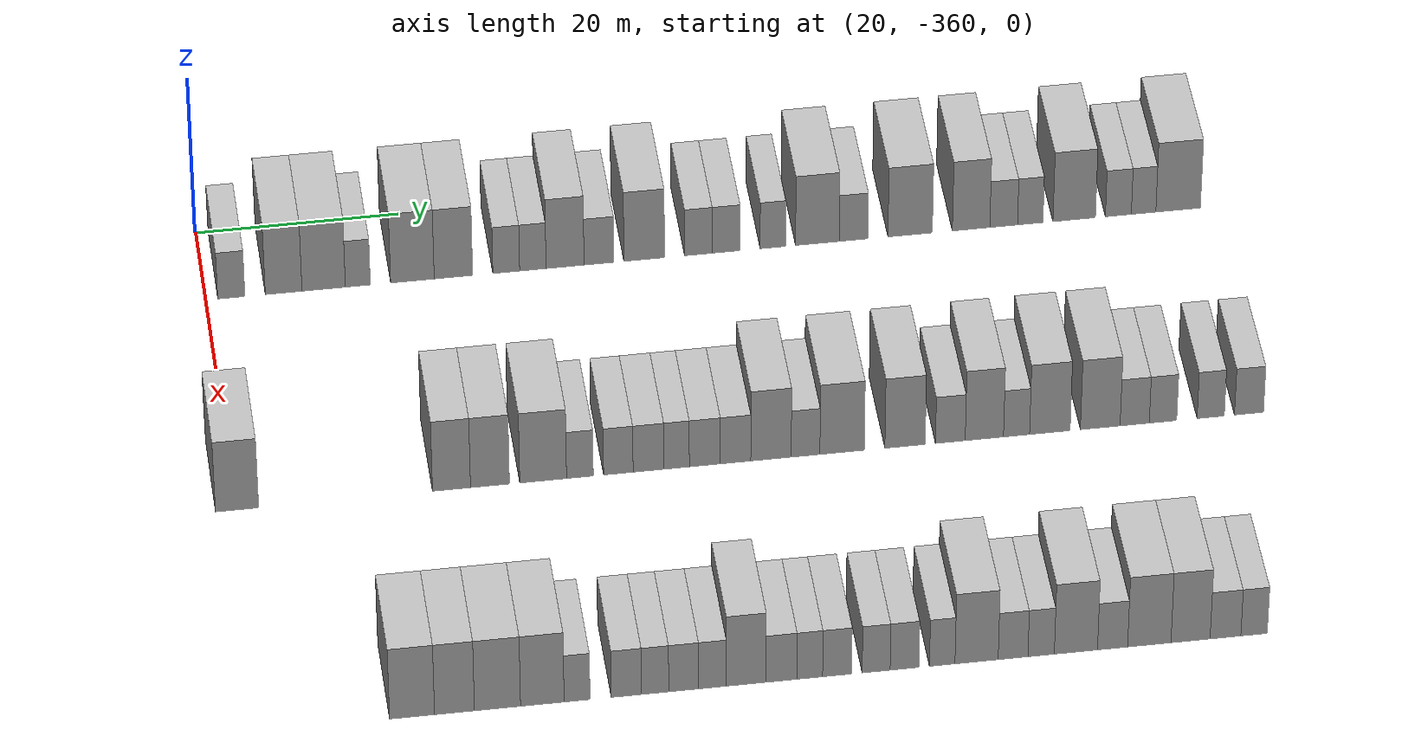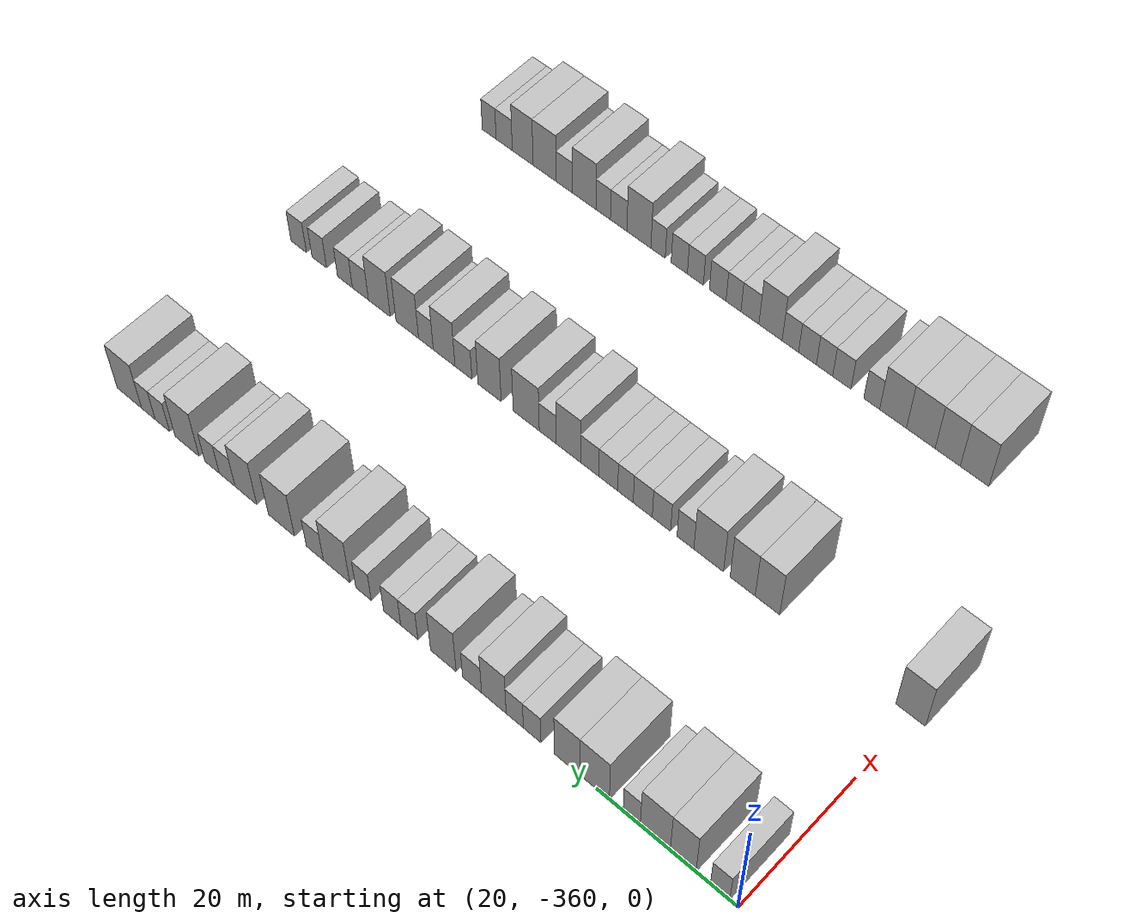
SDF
<sdf version="1.6">
 <world name="default">
  <model name="building_28">
   <static>1</static>
   <pose>25.0000 -357.4832 0 0.000000 0.000000 0.000000</pose>
   <link name="link">
    <pose>0 0 3.00 0 0 0</pose>
    <collision name="collision"><geometry><box><size>10.0000 2.6595 6.0000</size></box></geometry></collision>
    <visual name="visual">
     <cast_shadows>0</cast_shadows>
     <geometry><box><size>10.0000 2.6595 6.0000</size></box></geometry>
     <material>
      <script>
       <uri>model://HANNAS_wall/materials/scripts</uri>
       <uri>model://HANNAS_wall/materials/textures</uri>
       <name>vrc/HANNAS_wall</name>
      </script>
     </material>
    </visual>
   </link>
  </model>
  <model name="building_29">
   <static>1</static>
   <pose>25.0000 -352.3523 0 0.000000 0.000000 0.000000</pose>
   <link name="link">
    <pose>0 0 4.50 0 0 0</pose>
    <collision name="collision"><geometry><box><size>10.0000 3.6022 9.0000</size></box></geometry></collision>
    <visual name="visual">
     <cast_shadows>0</cast_shadows>
     <geometry><box><size>10.0000 3.6022 9.0000</size></box></geometry>
     <material>
      <script>
       <uri>model://HANNAS_wall/materials/scripts</uri>
       <uri>model://HANNAS_wall/materials/textures</uri>
       <name>vrc/HANNAS_wall</name>
      </script>
     </material>
    </visual>
   </link>
  </model>
  <model name="building_30">
   <static>1</static>
   <pose>25.0000 -348.4182 0 0.000000 0.000000 0.000000</pose>
   <link name="link">
    <pose>0 0 4.50 0 0 0</pose>
    <collision name="collision"><geometry><box><size>10.0000 4.2660 9.0000</size></box></geometry></collision>
    <visual name="visual">
     <cast_shadows>0</cast_shadows>
     <geometry><box><size>10.0000 4.2660 9.0000</size></box></geometry>
     <material>
      <script>
       <uri>model://HANNAS_wall/materials/scripts</uri>
       <uri>model://HANNAS_wall/materials/textures</uri>
       <name>vrc/HANNAS_wall</name>
      </script>
     </material>
    </visual>
   </link>
  </model>
  <model name="building_31">
   <static>1</static>
   <pose>25.0000 -345.0613 0 0.000000 0.000000 0.000000</pose>
   <link name="link">
    <pose>0 0 3.00 0 0 0</pose>
    <collision name="collision"><geometry><box><size>10.0000 2.4478 6.0000</size></box></geometry></collision>
    <visual name="visual">
     <cast_shadows>0</cast_shadows>
     <geometry><box><size>10.0000 2.4478 6.0000</size></box></geometry>
     <material>
      <script>
       <uri>model://HANNAS_wall/materials/scripts</uri>
       <uri>model://HANNAS_wall/materials/textures</uri>
       <name>vrc/HANNAS_wall</name>
      </script>
     </material>
    </visual>
   </link>
  </model>
  <model name="building_32">
   <static>1</static>
   <pose>25.0000 -339.6926 0 0.000000 0.000000 0.000000</pose>
   <link name="link">
    <pose>0 0 4.50 0 0 0</pose>
    <collision name="collision"><geometry><box><size>10.0000 4.2896 9.0000</size></box></geometry></collision>
    <visual name="visual">
     <cast_shadows>0</cast_shadows>
     <geometry><box><size>10.0000 4.2896 9.0000</size></box></geometry>
     <material>
      <script>
       <uri>model://HANNAS_wall/materials/scripts</uri>
       <uri>model://HANNAS_wall/materials/textures</uri>
       <name>vrc/HANNAS_wall</name>
      </script>
     </material>
    </visual>
   </link>
  </model>
  <model name="building_33">
   <static>1</static>
   <pose>25.0000 -335.6568 0 0.000000 0.000000 0.000000</pose>
   <link name="link">
    <pose>0 0 4.50 0 0 0</pose>
    <collision name="collision"><geometry><box><size>10.0000 3.7820 9.0000</size></box></geometry></collision>
    <visual name="visual">
     <cast_shadows>0</cast_shadows>
     <geometry><box><size>10.0000 3.7820 9.0000</size></box></geometry>
     <material>
      <script>
       <uri>model://HANNAS_wall/materials/scripts</uri>
       <uri>model://HANNAS_wall/materials/textures</uri>
       <name>vrc/HANNAS_wall</name>
      </script>
     </material>
    </visual>
   </link>
  </model>
  <model name="building_34">
   <static>1</static>
   <pose>25.0000 -330.4455 0 0.000000 0.000000 0.000000</pose>
   <link name="link">
    <pose>0 0 3.00 0 0 0</pose>
    <collision name="collision"><geometry><box><size>10.0000 2.6406 6.0000</size></box></geometry></collision>
    <visual name="visual">
     <cast_shadows>0</cast_shadows>
     <geometry><box><size>10.0000 2.6406 6.0000</size></box></geometry>
     <material>
      <script>
       <uri>model://HANNAS_wall/materials/scripts</uri>
       <uri>model://HANNAS_wall/materials/textures</uri>
       <name>vrc/HANNAS_wall</name>
      </script>
     </material>
    </visual>
   </link>
  </model>
  <model name="building_35">
   <static>1</static>
   <pose>25.0000 -327.8226 0 0.000000 0.000000 0.000000</pose>
   <link name="link">
    <pose>0 0 3.00 0 0 0</pose>
    <collision name="collision"><geometry><box><size>10.0000 2.6051 6.0000</size></box></geometry></collision>
    <visual name="visual">
     <cast_shadows>0</cast_shadows>
     <geometry><box><size>10.0000 2.6051 6.0000</size></box></geometry>
     <material>
      <script>
       <uri>model://HANNAS_wall/materials/scripts</uri>
       <uri>model://HANNAS_wall/materials/textures</uri>
       <name>vrc/HANNAS_wall</name>
      </script>
     </material>
    </visual>
   </link>
  </model>
  <model name="building_36">
   <static>1</static>
   <pose>25.0000 -324.6430 0 0.000000 0.000000 0.000000</pose>
   <link name="link">
    <pose>0 0 4.50 0 0 0</pose>
    <collision name="collision"><geometry><box><size>10.0000 3.7541 9.0000</size></box></geometry></collision>
    <visual name="visual">
     <cast_shadows>0</cast_shadows>
     <geometry><box><size>10.0000 3.7541 9.0000</size></box></geometry>
     <material>
      <script>
       <uri>model://HANNAS_wall/materials/scripts</uri>
       <uri>model://HANNAS_wall/materials/textures</uri>
       <name>vrc/HANNAS_wall</name>
      </script>
     </material>
    </visual>
   </link>
  </model>
  <model name="building_37">
   <static>1</static>
   <pose>25.0000 -321.2948 0 0.000000 0.000000 0.000000</pose>
   <link name="link">
    <pose>0 0 3.00 0 0 0</pose>
    <collision name="collision"><geometry><box><size>10.0000 2.9424 6.0000</size></box></geometry></collision>
    <visual name="visual">
     <cast_shadows>0</cast_shadows>
     <geometry><box><size>10.0000 2.9424 6.0000</size></box></geometry>
     <material>
      <script>
       <uri>model://HANNAS_wall/materials/scripts</uri>
       <uri>model://HANNAS_wall/materials/textures</uri>
       <name>vrc/HANNAS_wall</name>
      </script>
     </material>
    </visual>
   </link>
  </model>
  <model name="building_38">
   <static>1</static>
   <pose>25.0000 -316.8187 0 0.000000 0.000000 0.000000</pose>
   <link name="link">
    <pose>0 0 4.50 0 0 0</pose>
    <collision name="collision"><geometry><box><size>10.0000 4.0096 9.0000</size></box></geometry></collision>
    <visual name="visual">
     <cast_shadows>0</cast_shadows>
     <geometry><box><size>10.0000 4.0096 9.0000</size></box></geometry>
     <material>
      <script>
       <uri>model://HANNAS_wall/materials/scripts</uri>
       <uri>model://HANNAS_wall/materials/textures</uri>
       <name>vrc/HANNAS_wall</name>
      </script>
     </material>
    </visual>
   </link>
  </model>
  <model name="building_39">
   <static>1</static>
   <pose>25.0000 -311.4436 0 0.000000 0.000000 0.000000</pose>
   <link name="link">
    <pose>0 0 3.00 0 0 0</pose>
    <collision name="collision"><geometry><box><size>10.0000 2.7406 6.0000</size></box></geometry></collision>
    <visual name="visual">
     <cast_shadows>0</cast_shadows>
     <geometry><box><size>10.0000 2.7406 6.0000</size></box></geometry>
     <material>
      <script>
       <uri>model://HANNAS_wall/materials/scripts</uri>
       <uri>model://HANNAS_wall/materials/textures</uri>
       <name>vrc/HANNAS_wall</name>
      </script>
     </material>
    </visual>
   </link>
  </model>
  <model name="building_40">
   <static>1</static>
   <pose>25.0000 -308.6989 0 0.000000 0.000000 0.000000</pose>
   <link name="link">
    <pose>0 0 3.00 0 0 0</pose>
    <collision name="collision"><geometry><box><size>10.0000 2.7490 6.0000</size></box></geometry></collision>
    <visual name="visual">
     <cast_shadows>0</cast_shadows>
     <geometry><box><size>10.0000 2.7490 6.0000</size></box></geometry>
     <material>
      <script>
       <uri>model://HANNAS_wall/materials/scripts</uri>
       <uri>model://HANNAS_wall/materials/textures</uri>
       <name>vrc/HANNAS_wall</name>
      </script>
     </material>
    </visual>
   </link>
  </model>
  <model name="building_41">
   <static>1</static>
   <pose>25.0000 -304.0671 0 0.000000 0.000000 0.000000</pose>
   <link name="link">
    <pose>0 0 3.00 0 0 0</pose>
    <collision name="collision"><geometry><box><size>10.0000 2.5145 6.0000</size></box></geometry></collision>
    <visual name="visual">
     <cast_shadows>0</cast_shadows>
     <geometry><box><size>10.0000 2.5145 6.0000</size></box></geometry>
     <material>
      <script>
       <uri>model://HANNAS_wall/materials/scripts</uri>
       <uri>model://HANNAS_wall/materials/textures</uri>
       <name>vrc/HANNAS_wall</name>
      </script>
     </material>
    </visual>
   </link>
  </model>
  <model name="building_42">
   <static>1</static>
   <pose>25.0000 -299.6457 0 0.000000 0.000000 0.000000</pose>
   <link name="link">
    <pose>0 0 4.50 0 0 0</pose>
    <collision name="collision"><geometry><box><size>10.0000 4.3284 9.0000</size></box></geometry></collision>
    <visual name="visual">
     <cast_shadows>0</cast_shadows>
     <geometry><box><size>10.0000 4.3284 9.0000</size></box></geometry>
     <material>
      <script>
       <uri>model://HANNAS_wall/materials/scripts</uri>
       <uri>model://HANNAS_wall/materials/textures</uri>
       <name>vrc/HANNAS_wall</name>
      </script>
     </material>
    </visual>
   </link>
  </model>
  <model name="building_43">
   <static>1</static>
   <pose>25.0000 -296.0547 0 0.000000 0.000000 0.000000</pose>
   <link name="link">
    <pose>0 0 3.00 0 0 0</pose>
    <collision name="collision"><geometry><box><size>10.0000 2.8537 6.0000</size></box></geometry></collision>
    <visual name="visual">
     <cast_shadows>0</cast_shadows>
     <geometry><box><size>10.0000 2.8537 6.0000</size></box></geometry>
     <material>
      <script>
       <uri>model://HANNAS_wall/materials/scripts</uri>
       <uri>model://HANNAS_wall/materials/textures</uri>
       <name>vrc/HANNAS_wall</name>
      </script>
     </material>
    </visual>
   </link>
  </model>
  <model name="building_44">
   <static>1</static>
   <pose>25.0000 -290.4198 0 0.000000 0.000000 0.000000</pose>
   <link name="link">
    <pose>0 0 4.50 0 0 0</pose>
    <collision name="collision"><geometry><box><size>10.0000 4.4162 9.0000</size></box></geometry></collision>
    <visual name="visual">
     <cast_shadows>0</cast_shadows>
     <geometry><box><size>10.0000 4.4162 9.0000</size></box></geometry>
     <material>
      <script>
       <uri>model://HANNAS_wall/materials/scripts</uri>
       <uri>model://HANNAS_wall/materials/textures</uri>
       <name>vrc/HANNAS_wall</name>
      </script>
     </material>
    </visual>
   </link>
  </model>
  <model name="building_45">
   <static>1</static>
   <pose>25.0000 -284.3430 0 0.000000 0.000000 0.000000</pose>
   <link name="link">
    <pose>0 0 4.50 0 0 0</pose>
    <collision name="collision"><geometry><box><size>10.0000 3.7375 9.0000</size></box></geometry></collision>
    <visual name="visual">
     <cast_shadows>0</cast_shadows>
     <geometry><box><size>10.0000 3.7375 9.0000</size></box></geometry>
     <material>
      <script>
       <uri>model://HANNAS_wall/materials/scripts</uri>
       <uri>model://HANNAS_wall/materials/textures</uri>
       <name>vrc/HANNAS_wall</name>
      </script>
     </material>
    </visual>
   </link>
  </model>
  <model name="building_46">
   <static>1</static>
   <pose>25.0000 -281.0933 0 0.000000 0.000000 0.000000</pose>
   <link name="link">
    <pose>0 0 3.00 0 0 0</pose>
    <collision name="collision"><geometry><box><size>10.0000 2.7618 6.0000</size></box></geometry></collision>
    <visual name="visual">
     <cast_shadows>0</cast_shadows>
     <geometry><box><size>10.0000 2.7618 6.0000</size></box></geometry>
     <material>
      <script>
       <uri>model://HANNAS_wall/materials/scripts</uri>
       <uri>model://HANNAS_wall/materials/textures</uri>
       <name>vrc/HANNAS_wall</name>
      </script>
     </material>
    </visual>
   </link>
  </model>
  <model name="building_47">
   <static>1</static>
   <pose>25.0000 -278.4432 0 0.000000 0.000000 0.000000</pose>
   <link name="link">
    <pose>0 0 3.00 0 0 0</pose>
    <collision name="collision"><geometry><box><size>10.0000 2.5383 6.0000</size></box></geometry></collision>
    <visual name="visual">
     <cast_shadows>0</cast_shadows>
     <geometry><box><size>10.0000 2.5383 6.0000</size></box></geometry>
     <material>
      <script>
       <uri>model://HANNAS_wall/materials/scripts</uri>
       <uri>model://HANNAS_wall/materials/textures</uri>
       <name>vrc/HANNAS_wall</name>
      </script>
     </material>
    </visual>
   </link>
  </model>
  <model name="building_48">
   <static>1</static>
   <pose>25.0000 -274.0526 0 0.000000 0.000000 0.000000</pose>
   <link name="link">
    <pose>0 0 4.50 0 0 0</pose>
    <collision name="collision"><geometry><box><size>10.0000 4.2430 9.0000</size></box></geometry></collision>
    <visual name="visual">
     <cast_shadows>0</cast_shadows>
     <geometry><box><size>10.0000 4.2430 9.0000</size></box></geometry>
     <material>
      <script>
       <uri>model://HANNAS_wall/materials/scripts</uri>
       <uri>model://HANNAS_wall/materials/textures</uri>
       <name>vrc/HANNAS_wall</name>
      </script>
     </material>
    </visual>
   </link>
  </model>
  <model name="building_49">
   <static>1</static>
   <pose>25.0000 -269.6338 0 0.000000 0.000000 0.000000</pose>
   <link name="link">
    <pose>0 0 3.00 0 0 0</pose>
    <collision name="collision"><geometry><box><size>10.0000 2.5947 6.0000</size></box></geometry></collision>
    <visual name="visual">
     <cast_shadows>0</cast_shadows>
     <geometry><box><size>10.0000 2.5947 6.0000</size></box></geometry>
     <material>
      <script>
       <uri>model://HANNAS_wall/materials/scripts</uri>
       <uri>model://HANNAS_wall/materials/textures</uri>
       <name>vrc/HANNAS_wall</name>
      </script>
     </material>
    </visual>
   </link>
  </model>
  <model name="building_50">
   <static>1</static>
   <pose>25.0000 -267.1086 0 0.000000 0.000000 0.000000</pose>
   <link name="link">
    <pose>0 0 3.00 0 0 0</pose>
    <collision name="collision"><geometry><box><size>10.0000 2.4556 6.0000</size></box></geometry></collision>
    <visual name="visual">
     <cast_shadows>0</cast_shadows>
     <geometry><box><size>10.0000 2.4556 6.0000</size></box></geometry>
     <material>
      <script>
       <uri>model://HANNAS_wall/materials/scripts</uri>
       <uri>model://HANNAS_wall/materials/textures</uri>
       <name>vrc/HANNAS_wall</name>
      </script>
     </material>
    </visual>
   </link>
  </model>
  <model name="building_51">
   <static>1</static>
   <pose>25.0000 -263.6527 0 0.000000 0.000000 0.000000</pose>
   <link name="link">
    <pose>0 0 4.50 0 0 0</pose>
    <collision name="collision"><geometry><box><size>10.0000 4.4561 9.0000</size></box></geometry></collision>
    <visual name="visual">
     <cast_shadows>0</cast_shadows>
     <geometry><box><size>10.0000 4.4561 9.0000</size></box></geometry>
     <material>
      <script>
       <uri>model://HANNAS_wall/materials/scripts</uri>
       <uri>model://HANNAS_wall/materials/textures</uri>
       <name>vrc/HANNAS_wall</name>
      </script>
     </material>
    </visual>
   </link>
  </model>
  <model name="building_252">
   <static>1</static>
   <pose>55.0000 -359.8526 0 0.000000 0.000000 0.000000</pose>
   <link name="link">
    <pose>0 0 4.50 0 0 0</pose>
    <collision name="collision"><geometry><box><size>10.0000 4.1238 9.0000</size></box></geometry></collision>
    <visual name="visual">
     <cast_shadows>0</cast_shadows>
     <geometry><box><size>10.0000 4.1238 9.0000</size></box></geometry>
     <material>
      <script>
       <uri>model://HANNAS_wall/materials/scripts</uri>
       <uri>model://HANNAS_wall/materials/textures</uri>
       <name>vrc/HANNAS_wall</name>
      </script>
     </material>
    </visual>
   </link>
  </model>
  <model name="building_253">
   <static>1</static>
   <pose>55.0000 -339.3168 0 0.000000 0.000000 0.000000</pose>
   <link name="link">
    <pose>0 0 4.50 0 0 0</pose>
    <collision name="collision"><geometry><box><size>10.0000 3.6492 9.0000</size></box></geometry></collision>
    <visual name="visual">
     <cast_shadows>0</cast_shadows>
     <geometry><box><size>10.0000 3.6492 9.0000</size></box></geometry>
     <material>
      <script>
       <uri>model://HANNAS_wall/materials/scripts</uri>
       <uri>model://HANNAS_wall/materials/textures</uri>
       <name>vrc/HANNAS_wall</name>
      </script>
     </material>
    </visual>
   </link>
  </model>
  <model name="building_254">
   <static>1</static>
   <pose>55.0000 -335.6238 0 0.000000 0.000000 0.000000</pose>
   <link name="link">
    <pose>0 0 4.50 0 0 0</pose>
    <collision name="collision"><geometry><box><size>10.0000 3.7367 9.0000</size></box></geometry></collision>
    <visual name="visual">
     <cast_shadows>0</cast_shadows>
     <geometry><box><size>10.0000 3.7367 9.0000</size></box></geometry>
     <material>
      <script>
       <uri>model://HANNAS_wall/materials/scripts</uri>
       <uri>model://HANNAS_wall/materials/textures</uri>
       <name>vrc/HANNAS_wall</name>
      </script>
     </material>
    </visual>
   </link>
  </model>
  <model name="building_255">
   <static>1</static>
   <pose>55.0000 -330.5079 0 0.000000 0.000000 0.000000</pose>
   <link name="link">
    <pose>0 0 4.50 0 0 0</pose>
    <collision name="collision"><geometry><box><size>10.0000 4.4952 9.0000</size></box></geometry></collision>
    <visual name="visual">
     <cast_shadows>0</cast_shadows>
     <geometry><box><size>10.0000 4.4952 9.0000</size></box></geometry>
     <material>
      <script>
       <uri>model://HANNAS_wall/materials/scripts</uri>
       <uri>model://HANNAS_wall/materials/textures</uri>
       <name>vrc/HANNAS_wall</name>
      </script>
     </material>
    </visual>
   </link>
  </model>
  <model name="building_256">
   <static>1</static>
   <pose>55.0000 -326.9726 0 0.000000 0.000000 0.000000</pose>
   <link name="link">
    <pose>0 0 3.00 0 0 0</pose>
    <collision name="collision"><geometry><box><size>10.0000 2.5754 6.0000</size></box></geometry></collision>
    <visual name="visual">
     <cast_shadows>0</cast_shadows>
     <geometry><box><size>10.0000 2.5754 6.0000</size></box></geometry>
     <material>
      <script>
       <uri>model://HANNAS_wall/materials/scripts</uri>
       <uri>model://HANNAS_wall/materials/textures</uri>
       <name>vrc/HANNAS_wall</name>
      </script>
     </material>
    </visual>
   </link>
  </model>
  <model name="building_257">
   <static>1</static>
   <pose>55.0000 -323.2653 0 0.000000 0.000000 0.000000</pose>
   <link name="link">
    <pose>0 0 3.00 0 0 0</pose>
    <collision name="collision"><geometry><box><size>10.0000 2.8391 6.0000</size></box></geometry></collision>
    <visual name="visual">
     <cast_shadows>0</cast_shadows>
     <geometry><box><size>10.0000 2.8391 6.0000</size></box></geometry>
     <material>
      <script>
       <uri>model://HANNAS_wall/materials/scripts</uri>
       <uri>model://HANNAS_wall/materials/textures</uri>
       <name>vrc/HANNAS_wall</name>
      </script>
     </material>
    </visual>
   </link>
  </model>
  <model name="building_258">
   <static>1</static>
   <pose>55.0000 -320.3602 0 0.000000 0.000000 0.000000</pose>
   <link name="link">
    <pose>0 0 3.00 0 0 0</pose>
    <collision name="collision"><geometry><box><size>10.0000 2.9710 6.0000</size></box></geometry></collision>
    <visual name="visual">
     <cast_shadows>0</cast_shadows>
     <geometry><box><size>10.0000 2.9710 6.0000</size></box></geometry>
     <material>
      <script>
       <uri>model://HANNAS_wall/materials/scripts</uri>
       <uri>model://HANNAS_wall/materials/textures</uri>
       <name>vrc/HANNAS_wall</name>
      </script>
     </material>
    </visual>
   </link>
  </model>
  <model name="building_259">
   <static>1</static>
   <pose>55.0000 -317.6480 0 0.000000 0.000000 0.000000</pose>
   <link name="link">
    <pose>0 0 3.00 0 0 0</pose>
    <collision name="collision"><geometry><box><size>10.0000 2.4533 6.0000</size></box></geometry></collision>
    <visual name="visual">
     <cast_shadows>0</cast_shadows>
     <geometry><box><size>10.0000 2.4533 6.0000</size></box></geometry>
     <material>
      <script>
       <uri>model://HANNAS_wall/materials/scripts</uri>
       <uri>model://HANNAS_wall/materials/textures</uri>
       <name>vrc/HANNAS_wall</name>
      </script>
     </material>
    </visual>
   </link>
  </model>
  <model name="building_260">
   <static>1</static>
   <pose>55.0000 -314.9246 0 0.000000 0.000000 0.000000</pose>
   <link name="link">
    <pose>0 0 3.00 0 0 0</pose>
    <collision name="collision"><geometry><box><size>10.0000 2.9934 6.0000</size></box></geometry></collision>
    <visual name="visual">
     <cast_shadows>0</cast_shadows>
     <geometry><box><size>10.0000 2.9934 6.0000</size></box></geometry>
     <material>
      <script>
       <uri>model://HANNAS_wall/materials/scripts</uri>
       <uri>model://HANNAS_wall/materials/textures</uri>
       <name>vrc/HANNAS_wall</name>
      </script>
     </material>
    </visual>
   </link>
  </model>
  <model name="building_261">
   <static>1</static>
   <pose>55.0000 -311.9575 0 0.000000 0.000000 0.000000</pose>
   <link name="link">
    <pose>0 0 3.00 0 0 0</pose>
    <collision name="collision"><geometry><box><size>10.0000 2.9408 6.0000</size></box></geometry></collision>
    <visual name="visual">
     <cast_shadows>0</cast_shadows>
     <geometry><box><size>10.0000 2.9408 6.0000</size></box></geometry>
     <material>
      <script>
       <uri>model://HANNAS_wall/materials/scripts</uri>
       <uri>model://HANNAS_wall/materials/textures</uri>
       <name>vrc/HANNAS_wall</name>
      </script>
     </material>
    </visual>
   </link>
  </model>
  <model name="building_262">
   <static>1</static>
   <pose>55.0000 -308.5311 0 0.000000 0.000000 0.000000</pose>
   <link name="link">
    <pose>0 0 4.50 0 0 0</pose>
    <collision name="collision"><geometry><box><size>10.0000 3.9121 9.0000</size></box></geometry></collision>
    <visual name="visual">
     <cast_shadows>0</cast_shadows>
     <geometry><box><size>10.0000 3.9121 9.0000</size></box></geometry>
     <material>
      <script>
       <uri>model://HANNAS_wall/materials/scripts</uri>
       <uri>model://HANNAS_wall/materials/textures</uri>
       <name>vrc/HANNAS_wall</name>
      </script>
     </material>
    </visual>
   </link>
  </model>
  <model name="building_263">
   <static>1</static>
   <pose>55.0000 -305.1873 0 0.000000 0.000000 0.000000</pose>
   <link name="link">
    <pose>0 0 3.00 0 0 0</pose>
    <collision name="collision"><geometry><box><size>10.0000 2.7755 6.0000</size></box></geometry></collision>
    <visual name="visual">
     <cast_shadows>0</cast_shadows>
     <geometry><box><size>10.0000 2.7755 6.0000</size></box></geometry>
     <material>
      <script>
       <uri>model://HANNAS_wall/materials/scripts</uri>
       <uri>model://HANNAS_wall/materials/textures</uri>
       <name>vrc/HANNAS_wall</name>
      </script>
     </material>
    </visual>
   </link>
  </model>
  <model name="building_264">
   <static>1</static>
   <pose>55.0000 -301.6522 0 0.000000 0.000000 0.000000</pose>
   <link name="link">
    <pose>0 0 4.50 0 0 0</pose>
    <collision name="collision"><geometry><box><size>10.0000 4.2947 9.0000</size></box></geometry></collision>
    <visual name="visual">
     <cast_shadows>0</cast_shadows>
     <geometry><box><size>10.0000 4.2947 9.0000</size></box></geometry>
     <material>
      <script>
       <uri>model://HANNAS_wall/materials/scripts</uri>
       <uri>model://HANNAS_wall/materials/textures</uri>
       <name>vrc/HANNAS_wall</name>
      </script>
     </material>
    </visual>
   </link>
  </model>
  <model name="building_265">
   <static>1</static>
   <pose>55.0000 -295.5514 0 0.000000 0.000000 0.000000</pose>
   <link name="link">
    <pose>0 0 4.50 0 0 0</pose>
    <collision name="collision"><geometry><box><size>10.0000 3.9070 9.0000</size></box></geometry></collision>
    <visual name="visual">
     <cast_shadows>0</cast_shadows>
     <geometry><box><size>10.0000 3.9070 9.0000</size></box></geometry>
     <material>
      <script>
       <uri>model://HANNAS_wall/materials/scripts</uri>
       <uri>model://HANNAS_wall/materials/textures</uri>
       <name>vrc/HANNAS_wall</name>
      </script>
     </material>
    </visual>
   </link>
  </model>
  <model name="building_266">
   <static>1</static>
   <pose>55.0000 -291.1516 0 0.000000 0.000000 0.000000</pose>
   <link name="link">
    <pose>0 0 3.00 0 0 0</pose>
    <collision name="collision"><geometry><box><size>10.0000 2.8925 6.0000</size></box></geometry></collision>
    <visual name="visual">
     <cast_shadows>0</cast_shadows>
     <geometry><box><size>10.0000 2.8925 6.0000</size></box></geometry>
     <material>
      <script>
       <uri>model://HANNAS_wall/materials/scripts</uri>
       <uri>model://HANNAS_wall/materials/textures</uri>
       <name>vrc/HANNAS_wall</name>
      </script>
     </material>
    </visual>
   </link>
  </model>
  <model name="building_267">
   <static>1</static>
   <pose>55.0000 -287.8465 0 0.000000 0.000000 0.000000</pose>
   <link name="link">
    <pose>0 0 4.50 0 0 0</pose>
    <collision name="collision"><geometry><box><size>10.0000 3.7178 9.0000</size></box></geometry></collision>
    <visual name="visual">
     <cast_shadows>0</cast_shadows>
     <geometry><box><size>10.0000 3.7178 9.0000</size></box></geometry>
     <material>
      <script>
       <uri>model://HANNAS_wall/materials/scripts</uri>
       <uri>model://HANNAS_wall/materials/textures</uri>
       <name>vrc/HANNAS_wall</name>
      </script>
     </material>
    </visual>
   </link>
  </model>
  <model name="building_268">
   <static>1</static>
   <pose>55.0000 -284.7183 0 0.000000 0.000000 0.000000</pose>
   <link name="link">
    <pose>0 0 3.00 0 0 0</pose>
    <collision name="collision"><geometry><box><size>10.0000 2.5385 6.0000</size></box></geometry></collision>
    <visual name="visual">
     <cast_shadows>0</cast_shadows>
     <geometry><box><size>10.0000 2.5385 6.0000</size></box></geometry>
     <material>
      <script>
       <uri>model://HANNAS_wall/materials/scripts</uri>
       <uri>model://HANNAS_wall/materials/textures</uri>
       <name>vrc/HANNAS_wall</name>
      </script>
     </material>
    </visual>
   </link>
  </model>
  <model name="building_269">
   <static>1</static>
   <pose>55.0000 -281.4765 0 0.000000 0.000000 0.000000</pose>
   <link name="link">
    <pose>0 0 4.50 0 0 0</pose>
    <collision name="collision"><geometry><box><size>10.0000 3.9451 9.0000</size></box></geometry></collision>
    <visual name="visual">
     <cast_shadows>0</cast_shadows>
     <geometry><box><size>10.0000 3.9451 9.0000</size></box></geometry>
     <material>
      <script>
       <uri>model://HANNAS_wall/materials/scripts</uri>
       <uri>model://HANNAS_wall/materials/textures</uri>
       <name>vrc/HANNAS_wall</name>
      </script>
     </material>
    </visual>
   </link>
  </model>
  <model name="building_270">
   <static>1</static>
   <pose>55.0000 -276.5681 0 0.000000 0.000000 0.000000</pose>
   <link name="link">
    <pose>0 0 4.50 0 0 0</pose>
    <collision name="collision"><geometry><box><size>10.0000 3.8717 9.0000</size></box></geometry></collision>
    <visual name="visual">
     <cast_shadows>0</cast_shadows>
     <geometry><box><size>10.0000 3.8717 9.0000</size></box></geometry>
     <material>
      <script>
       <uri>model://HANNAS_wall/materials/scripts</uri>
       <uri>model://HANNAS_wall/materials/textures</uri>
       <name>vrc/HANNAS_wall</name>
      </script>
     </material>
    </visual>
   </link>
  </model>
  <model name="building_271">
   <static>1</static>
   <pose>55.0000 -273.2068 0 0.000000 0.000000 0.000000</pose>
   <link name="link">
    <pose>0 0 3.00 0 0 0</pose>
    <collision name="collision"><geometry><box><size>10.0000 2.8509 6.0000</size></box></geometry></collision>
    <visual name="visual">
     <cast_shadows>0</cast_shadows>
     <geometry><box><size>10.0000 2.8509 6.0000</size></box></geometry>
     <material>
      <script>
       <uri>model://HANNAS_wall/materials/scripts</uri>
       <uri>model://HANNAS_wall/materials/textures</uri>
       <name>vrc/HANNAS_wall</name>
      </script>
     </material>
    </visual>
   </link>
  </model>
  <model name="building_272">
   <static>1</static>
   <pose>55.0000 -270.4485 0 0.000000 0.000000 0.000000</pose>
   <link name="link">
    <pose>0 0 3.00 0 0 0</pose>
    <collision name="collision"><geometry><box><size>10.0000 2.6658 6.0000</size></box></geometry></collision>
    <visual name="visual">
     <cast_shadows>0</cast_shadows>
     <geometry><box><size>10.0000 2.6658 6.0000</size></box></geometry>
     <material>
      <script>
       <uri>model://HANNAS_wall/materials/scripts</uri>
       <uri>model://HANNAS_wall/materials/textures</uri>
       <name>vrc/HANNAS_wall</name>
      </script>
     </material>
    </visual>
   </link>
  </model>
  <model name="building_273">
   <static>1</static>
   <pose>55.0000 -265.7904 0 0.000000 0.000000 0.000000</pose>
   <link name="link">
    <pose>0 0 3.00 0 0 0</pose>
    <collision name="collision"><geometry><box><size>10.0000 2.6504 6.0000</size></box></geometry></collision>
    <visual name="visual">
     <cast_shadows>0</cast_shadows>
     <geometry><box><size>10.0000 2.6504 6.0000</size></box></geometry>
     <material>
      <script>
       <uri>model://HANNAS_wall/materials/scripts</uri>
       <uri>model://HANNAS_wall/materials/textures</uri>
       <name>vrc/HANNAS_wall</name>
      </script>
     </material>
    </visual>
   </link>
  </model>
  <model name="building_274">
   <static>1</static>
   <pose>55.0000 -262.0509 0 0.000000 0.000000 0.000000</pose>
   <link name="link">
    <pose>0 0 3.00 0 0 0</pose>
    <collision name="collision"><geometry><box><size>10.0000 2.8286 6.0000</size></box></geometry></collision>
    <visual name="visual">
     <cast_shadows>0</cast_shadows>
     <geometry><box><size>10.0000 2.8286 6.0000</size></box></geometry>
     <material>
      <script>
       <uri>model://HANNAS_wall/materials/scripts</uri>
       <uri>model://HANNAS_wall/materials/textures</uri>
       <name>vrc/HANNAS_wall</name>
      </script>
     </material>
    </visual>
   </link>
  </model>
  <model name="building_463">
   <static>1</static>
   <pose>85.0000 -346.4722 0 0.000000 0.000000 0.000000</pose>
   <link name="link">
    <pose>0 0 4.50 0 0 0</pose>
    <collision name="collision"><geometry><box><size>10.0000 4.2034 9.0000</size></box></geometry></collision>
    <visual name="visual">
     <cast_shadows>0</cast_shadows>
     <geometry><box><size>10.0000 4.2034 9.0000</size></box></geometry>
     <material>
      <script>
       <uri>model://HANNAS_wall/materials/scripts</uri>
       <uri>model://HANNAS_wall/materials/textures</uri>
       <name>vrc/HANNAS_wall</name>
      </script>
     </material>
    </visual>
   </link>
  </model>
  <model name="building_464">
   <static>1</static>
   <pose>85.0000 -342.5060 0 0.000000 0.000000 0.000000</pose>
   <link name="link">
    <pose>0 0 4.50 0 0 0</pose>
    <collision name="collision"><geometry><box><size>10.0000 3.7289 9.0000</size></box></geometry></collision>
    <visual name="visual">
     <cast_shadows>0</cast_shadows>
     <geometry><box><size>10.0000 3.7289 9.0000</size></box></geometry>
     <material>
      <script>
       <uri>model://HANNAS_wall/materials/scripts</uri>
       <uri>model://HANNAS_wall/materials/textures</uri>
       <name>vrc/HANNAS_wall</name>
      </script>
     </material>
    </visual>
   </link>
  </model>
  <model name="building_465">
   <static>1</static>
   <pose>85.0000 -338.4851 0 0.000000 0.000000 0.000000</pose>
   <link name="link">
    <pose>0 0 4.50 0 0 0</pose>
    <collision name="collision"><geometry><box><size>10.0000 4.3129 9.0000</size></box></geometry></collision>
    <visual name="visual">
     <cast_shadows>0</cast_shadows>
     <geometry><box><size>10.0000 4.3129 9.0000</size></box></geometry>
     <material>
      <script>
       <uri>model://HANNAS_wall/materials/scripts</uri>
       <uri>model://HANNAS_wall/materials/textures</uri>
       <name>vrc/HANNAS_wall</name>
      </script>
     </material>
    </visual>
   </link>
  </model>
  <model name="building_466">
   <static>1</static>
   <pose>85.0000 -334.2884 0 0.000000 0.000000 0.000000</pose>
   <link name="link">
    <pose>0 0 4.50 0 0 0</pose>
    <collision name="collision"><geometry><box><size>10.0000 4.0806 9.0000</size></box></geometry></collision>
    <visual name="visual">
     <cast_shadows>0</cast_shadows>
     <geometry><box><size>10.0000 4.0806 9.0000</size></box></geometry>
     <material>
      <script>
       <uri>model://HANNAS_wall/materials/scripts</uri>
       <uri>model://HANNAS_wall/materials/textures</uri>
       <name>vrc/HANNAS_wall</name>
      </script>
     </material>
    </visual>
   </link>
  </model>
  <model name="building_467">
   <static>1</static>
   <pose>85.0000 -331.0350 0 0.000000 0.000000 0.000000</pose>
   <link name="link">
    <pose>0 0 3.00 0 0 0</pose>
    <collision name="collision"><geometry><box><size>10.0000 2.4260 6.0000</size></box></geometry></collision>
    <visual name="visual">
     <cast_shadows>0</cast_shadows>
     <geometry><box><size>10.0000 2.4260 6.0000</size></box></geometry>
     <material>
      <script>
       <uri>model://HANNAS_wall/materials/scripts</uri>
       <uri>model://HANNAS_wall/materials/textures</uri>
       <name>vrc/HANNAS_wall</name>
      </script>
     </material>
    </visual>
   </link>
  </model>
  <model name="building_468">
   <static>1</static>
   <pose>85.0000 -326.4053 0 0.000000 0.000000 0.000000</pose>
   <link name="link">
    <pose>0 0 3.00 0 0 0</pose>
    <collision name="collision"><geometry><box><size>10.0000 2.8334 6.0000</size></box></geometry></collision>
    <visual name="visual">
     <cast_shadows>0</cast_shadows>
     <geometry><box><size>10.0000 2.8334 6.0000</size></box></geometry>
     <material>
      <script>
       <uri>model://HANNAS_wall/materials/scripts</uri>
       <uri>model://HANNAS_wall/materials/textures</uri>
       <name>vrc/HANNAS_wall</name>
      </script>
     </material>
    </visual>
   </link>
  </model>
  <model name="building_469">
   <static>1</static>
   <pose>85.0000 -323.7125 0 0.000000 0.000000 0.000000</pose>
   <link name="link">
    <pose>0 0 3.00 0 0 0</pose>
    <collision name="collision"><geometry><box><size>10.0000 2.5522 6.0000</size></box></geometry></collision>
    <visual name="visual">
     <cast_shadows>0</cast_shadows>
     <geometry><box><size>10.0000 2.5522 6.0000</size></box></geometry>
     <material>
      <script>
       <uri>model://HANNAS_wall/materials/scripts</uri>
       <uri>model://HANNAS_wall/materials/textures</uri>
       <name>vrc/HANNAS_wall</name>
      </script>
     </material>
    </visual>
   </link>
  </model>
  <model name="building_470">
   <static>1</static>
   <pose>85.0000 -321.0289 0 0.000000 0.000000 0.000000</pose>
   <link name="link">
    <pose>0 0 3.00 0 0 0</pose>
    <collision name="collision"><geometry><box><size>10.0000 2.8151 6.0000</size></box></geometry></collision>
    <visual name="visual">
     <cast_shadows>0</cast_shadows>
     <geometry><box><size>10.0000 2.8151 6.0000</size></box></geometry>
     <material>
      <script>
       <uri>model://HANNAS_wall/materials/scripts</uri>
       <uri>model://HANNAS_wall/materials/textures</uri>
       <name>vrc/HANNAS_wall</name>
      </script>
     </material>
    </visual>
   </link>
  </model>
  <model name="building_471">
   <static>1</static>
   <pose>85.0000 -318.3186 0 0.000000 0.000000 0.000000</pose>
   <link name="link">
    <pose>0 0 3.00 0 0 0</pose>
    <collision name="collision"><geometry><box><size>10.0000 2.6056 6.0000</size></box></geometry></collision>
    <visual name="visual">
     <cast_shadows>0</cast_shadows>
     <geometry><box><size>10.0000 2.6056 6.0000</size></box></geometry>
     <material>
      <script>
       <uri>model://HANNAS_wall/materials/scripts</uri>
       <uri>model://HANNAS_wall/materials/textures</uri>
       <name>vrc/HANNAS_wall</name>
      </script>
     </material>
    </visual>
   </link>
  </model>
  <model name="building_472">
   <static>1</static>
   <pose>85.0000 -315.1486 0 0.000000 0.000000 0.000000</pose>
   <link name="link">
    <pose>0 0 4.50 0 0 0</pose>
    <collision name="collision"><geometry><box><size>10.0000 3.7342 9.0000</size></box></geometry></collision>
    <visual name="visual">
     <cast_shadows>0</cast_shadows>
     <geometry><box><size>10.0000 3.7342 9.0000</size></box></geometry>
     <material>
      <script>
       <uri>model://HANNAS_wall/materials/scripts</uri>
       <uri>model://HANNAS_wall/materials/textures</uri>
       <name>vrc/HANNAS_wall</name>
      </script>
     </material>
    </visual>
   </link>
  </model>
  <model name="building_473">
   <static>1</static>
   <pose>85.0000 -311.8271 0 0.000000 0.000000 0.000000</pose>
   <link name="link">
    <pose>0 0 3.00 0 0 0</pose>
    <collision name="collision"><geometry><box><size>10.0000 2.9088 6.0000</size></box></geometry></collision>
    <visual name="visual">
     <cast_shadows>0</cast_shadows>
     <geometry><box><size>10.0000 2.9088 6.0000</size></box></geometry>
     <material>
      <script>
       <uri>model://HANNAS_wall/materials/scripts</uri>
       <uri>model://HANNAS_wall/materials/textures</uri>
       <name>vrc/HANNAS_wall</name>
      </script>
     </material>
    </visual>
   </link>
  </model>
  <model name="building_474">
   <static>1</static>
   <pose>85.0000 -309.1611 0 0.000000 0.000000 0.000000</pose>
   <link name="link">
    <pose>0 0 3.00 0 0 0</pose>
    <collision name="collision"><geometry><box><size>10.0000 2.4233 6.0000</size></box></geometry></collision>
    <visual name="visual">
     <cast_shadows>0</cast_shadows>
     <geometry><box><size>10.0000 2.4233 6.0000</size></box></geometry>
     <material>
      <script>
       <uri>model://HANNAS_wall/materials/scripts</uri>
       <uri>model://HANNAS_wall/materials/textures</uri>
       <name>vrc/HANNAS_wall</name>
      </script>
     </material>
    </visual>
   </link>
  </model>
  <model name="building_475">
   <static>1</static>
   <pose>85.0000 -306.5834 0 0.000000 0.000000 0.000000</pose>
   <link name="link">
    <pose>0 0 3.00 0 0 0</pose>
    <collision name="collision"><geometry><box><size>10.0000 2.7322 6.0000</size></box></geometry></collision>
    <visual name="visual">
     <cast_shadows>0</cast_shadows>
     <geometry><box><size>10.0000 2.7322 6.0000</size></box></geometry>
     <material>
      <script>
       <uri>model://HANNAS_wall/materials/scripts</uri>
       <uri>model://HANNAS_wall/materials/textures</uri>
       <name>vrc/HANNAS_wall</name>
      </script>
     </material>
    </visual>
   </link>
  </model>
  <model name="building_476">
   <static>1</static>
   <pose>85.0000 -302.8972 0 0.000000 0.000000 0.000000</pose>
   <link name="link">
    <pose>0 0 3.00 0 0 0</pose>
    <collision name="collision"><geometry><box><size>10.0000 2.6401 6.0000</size></box></geometry></collision>
    <visual name="visual">
     <cast_shadows>0</cast_shadows>
     <geometry><box><size>10.0000 2.6401 6.0000</size></box></geometry>
     <material>
      <script>
       <uri>model://HANNAS_wall/materials/scripts</uri>
       <uri>model://HANNAS_wall/materials/textures</uri>
       <name>vrc/HANNAS_wall</name>
      </script>
     </material>
    </visual>
   </link>
  </model>
  <model name="building_477">
   <static>1</static>
   <pose>85.0000 -300.2205 0 0.000000 0.000000 0.000000</pose>
   <link name="link">
    <pose>0 0 3.00 0 0 0</pose>
    <collision name="collision"><geometry><box><size>10.0000 2.7134 6.0000</size></box></geometry></collision>
    <visual name="visual">
     <cast_shadows>0</cast_shadows>
     <geometry><box><size>10.0000 2.7134 6.0000</size></box></geometry>
     <material>
      <script>
       <uri>model://HANNAS_wall/materials/scripts</uri>
       <uri>model://HANNAS_wall/materials/textures</uri>
       <name>vrc/HANNAS_wall</name>
      </script>
     </material>
    </visual>
   </link>
  </model>
  <model name="building_478">
   <static>1</static>
   <pose>85.0000 -296.6576 0 0.000000 0.000000 0.000000</pose>
   <link name="link">
    <pose>0 0 3.00 0 0 0</pose>
    <collision name="collision"><geometry><box><size>10.0000 2.4124 6.0000</size></box></geometry></collision>
    <visual name="visual">
     <cast_shadows>0</cast_shadows>
     <geometry><box><size>10.0000 2.4124 6.0000</size></box></geometry>
     <material>
      <script>
       <uri>model://HANNAS_wall/materials/scripts</uri>
       <uri>model://HANNAS_wall/materials/textures</uri>
       <name>vrc/HANNAS_wall</name>
      </script>
     </material>
    </visual>
   </link>
  </model>
  <model name="building_479">
   <static>1</static>
   <pose>85.0000 -293.4075 0 0.000000 0.000000 0.000000</pose>
   <link name="link">
    <pose>0 0 4.50 0 0 0</pose>
    <collision name="collision"><geometry><box><size>10.0000 4.0878 9.0000</size></box></geometry></collision>
    <visual name="visual">
     <cast_shadows>0</cast_shadows>
     <geometry><box><size>10.0000 4.0878 9.0000</size></box></geometry>
     <material>
      <script>
       <uri>model://HANNAS_wall/materials/scripts</uri>
       <uri>model://HANNAS_wall/materials/textures</uri>
       <name>vrc/HANNAS_wall</name>
      </script>
     </material>
    </visual>
   </link>
  </model>
  <model name="building_480">
   <static>1</static>
   <pose>85.0000 -289.9549 0 0.000000 0.000000 0.000000</pose>
   <link name="link">
    <pose>0 0 3.00 0 0 0</pose>
    <collision name="collision"><geometry><box><size>10.0000 2.8175 6.0000</size></box></geometry></collision>
    <visual name="visual">
     <cast_shadows>0</cast_shadows>
     <geometry><box><size>10.0000 2.8175 6.0000</size></box></geometry>
     <material>
      <script>
       <uri>model://HANNAS_wall/materials/scripts</uri>
       <uri>model://HANNAS_wall/materials/textures</uri>
       <name>vrc/HANNAS_wall</name>
      </script>
     </material>
    </visual>
   </link>
  </model>
  <model name="building_481">
   <static>1</static>
   <pose>85.0000 -287.2952 0 0.000000 0.000000 0.000000</pose>
   <link name="link">
    <pose>0 0 3.00 0 0 0</pose>
    <collision name="collision"><geometry><box><size>10.0000 2.5018 6.0000</size></box></geometry></collision>
    <visual name="visual">
     <cast_shadows>0</cast_shadows>
     <geometry><box><size>10.0000 2.5018 6.0000</size></box></geometry>
     <material>
      <script>
       <uri>model://HANNAS_wall/materials/scripts</uri>
       <uri>model://HANNAS_wall/materials/textures</uri>
       <name>vrc/HANNAS_wall</name>
      </script>
     </material>
    </visual>
   </link>
  </model>
  <model name="building_482">
   <static>1</static>
   <pose>85.0000 -283.9974 0 0.000000 0.000000 0.000000</pose>
   <link name="link">
    <pose>0 0 4.50 0 0 0</pose>
    <collision name="collision"><geometry><box><size>10.0000 4.0938 9.0000</size></box></geometry></collision>
    <visual name="visual">
     <cast_shadows>0</cast_shadows>
     <geometry><box><size>10.0000 4.0938 9.0000</size></box></geometry>
     <material>
      <script>
       <uri>model://HANNAS_wall/materials/scripts</uri>
       <uri>model://HANNAS_wall/materials/textures</uri>
       <name>vrc/HANNAS_wall</name>
      </script>
     </material>
    </visual>
   </link>
  </model>
  <model name="building_483">
   <static>1</static>
   <pose>85.0000 -280.5219 0 0.000000 0.000000 0.000000</pose>
   <link name="link">
    <pose>0 0 3.00 0 0 0</pose>
    <collision name="collision"><geometry><box><size>10.0000 2.8572 6.0000</size></box></geometry></collision>
    <visual name="visual">
     <cast_shadows>0</cast_shadows>
     <geometry><box><size>10.0000 2.8572 6.0000</size></box></geometry>
     <material>
      <script>
       <uri>model://HANNAS_wall/materials/scripts</uri>
       <uri>model://HANNAS_wall/materials/textures</uri>
       <name>vrc/HANNAS_wall</name>
      </script>
     </material>
    </visual>
   </link>
  </model>
  <model name="building_484">
   <static>1</static>
   <pose>85.0000 -277.0330 0 0.000000 0.000000 0.000000</pose>
   <link name="link">
    <pose>0 0 4.50 0 0 0</pose>
    <collision name="collision"><geometry><box><size>10.0000 4.1205 9.0000</size></box></geometry></collision>
    <visual name="visual">
     <cast_shadows>0</cast_shadows>
     <geometry><box><size>10.0000 4.1205 9.0000</size></box></geometry>
     <material>
      <script>
       <uri>model://HANNAS_wall/materials/scripts</uri>
       <uri>model://HANNAS_wall/materials/textures</uri>
       <name>vrc/HANNAS_wall</name>
      </script>
     </material>
    </visual>
   </link>
  </model>
  <model name="building_485">
   <static>1</static>
   <pose>85.0000 -273.1131 0 0.000000 0.000000 0.000000</pose>
   <link name="link">
    <pose>0 0 4.50 0 0 0</pose>
    <collision name="collision"><geometry><box><size>10.0000 3.7193 9.0000</size></box></geometry></collision>
    <visual name="visual">
     <cast_shadows>0</cast_shadows>
     <geometry><box><size>10.0000 3.7193 9.0000</size></box></geometry>
     <material>
      <script>
       <uri>model://HANNAS_wall/materials/scripts</uri>
       <uri>model://HANNAS_wall/materials/textures</uri>
       <name>vrc/HANNAS_wall</name>
      </script>
     </material>
    </visual>
   </link>
  </model>
  <model name="building_486">
   <static>1</static>
   <pose>85.0000 -269.7895 0 0.000000 0.000000 0.000000</pose>
   <link name="link">
    <pose>0 0 3.00 0 0 0</pose>
    <collision name="collision"><geometry><box><size>10.0000 2.9278 6.0000</size></box></geometry></collision>
    <visual name="visual">
     <cast_shadows>0</cast_shadows>
     <geometry><box><size>10.0000 2.9278 6.0000</size></box></geometry>
     <material>
      <script>
       <uri>model://HANNAS_wall/materials/scripts</uri>
       <uri>model://HANNAS_wall/materials/textures</uri>
       <name>vrc/HANNAS_wall</name>
      </script>
     </material>
    </visual>
   </link>
  </model>
  <model name="building_487">
   <static>1</static>
   <pose>85.0000 -267.0708 0 0.000000 0.000000 0.000000</pose>
   <link name="link">
    <pose>0 0 3.00 0 0 0</pose>
    <collision name="collision"><geometry><box><size>10.0000 2.5097 6.0000</size></box></geometry></collision>
    <visual name="visual">
     <cast_shadows>0</cast_shadows>
     <geometry><box><size>10.0000 2.5097 6.0000</size></box></geometry>
     <material>
      <script>
       <uri>model://HANNAS_wall/materials/scripts</uri>
       <uri>model://HANNAS_wall/materials/textures</uri>
       <name>vrc/HANNAS_wall</name>
      </script>
     </material>
    </visual>
   </link>
  </model>
 </world>
</sdf>
